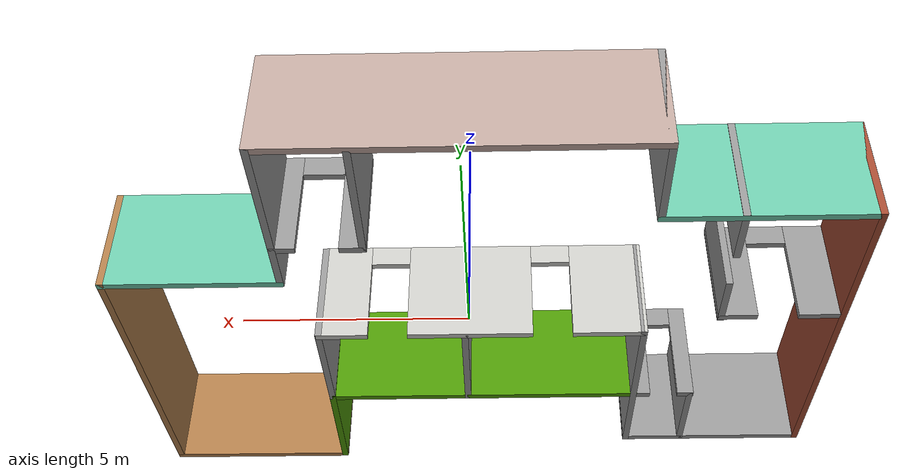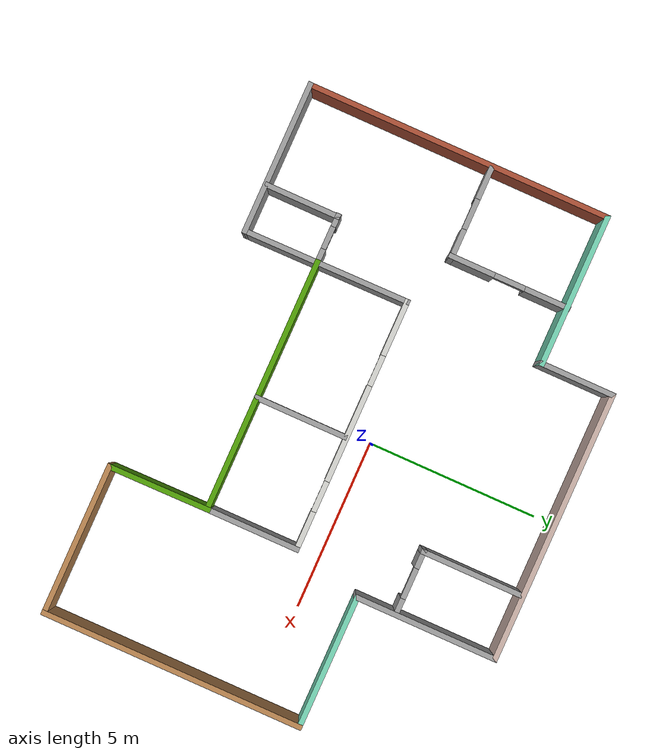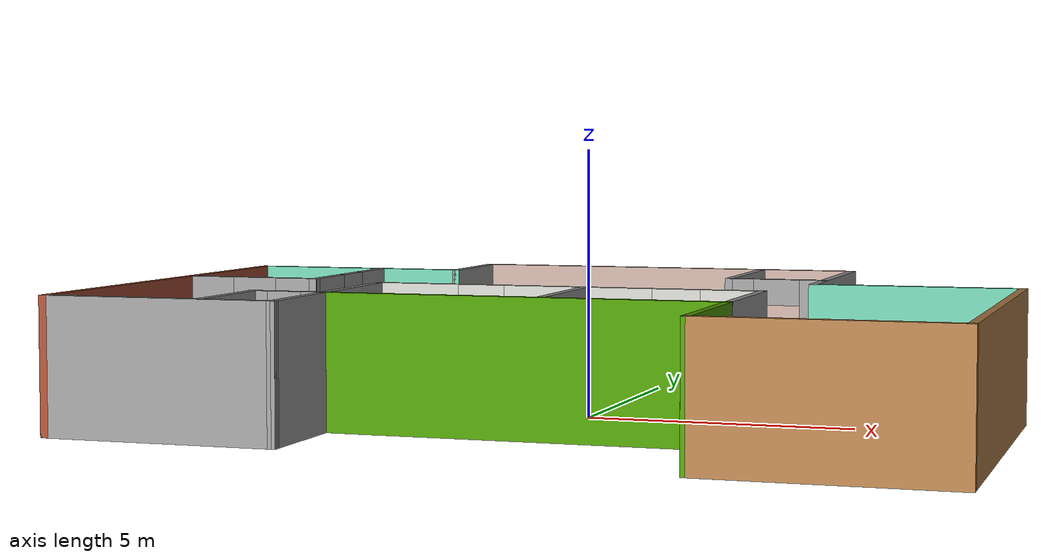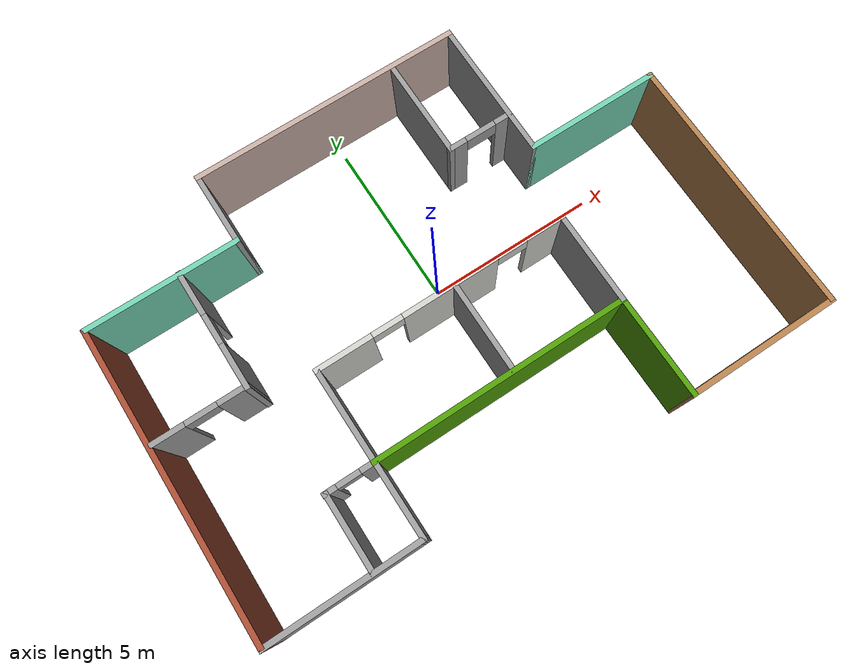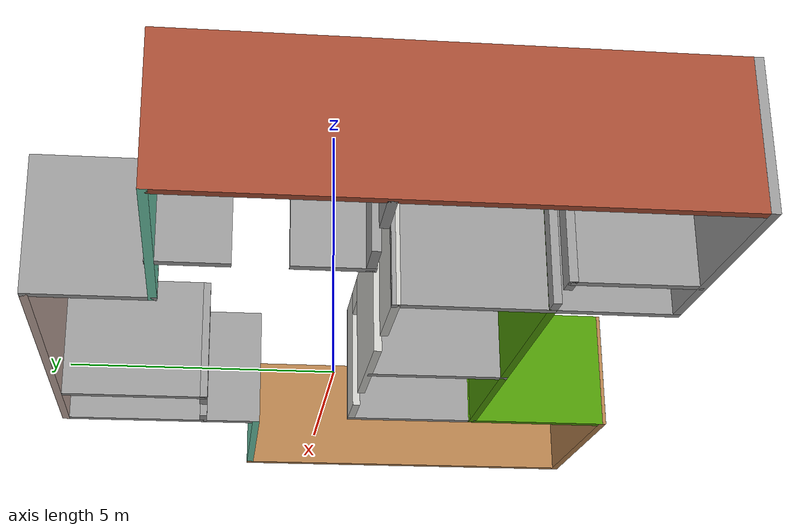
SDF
<?xml version='1.0'?>
<sdf version='1.6'>
  <model name='details-world'>
    <pose frame=''>-0.211429 -0.403532 0 0 -0 0</pose>
    <link name='Wall_10'>
      <collision name='Wall_10_Collision'>
        <geometry>
          <box>
            <size>4.5 0.15 2.5</size>
          </box>
        </geometry>
        <pose frame=''>0 0 1.25 0 -0 0</pose>
      </collision>
      <visual name='Wall_10_Visual'>
        <pose frame=''>0 0 1.25 0 -0 0</pose>
        <geometry>
          <box>
            <size>4.5 0.15 2.5</size>
          </box>
        </geometry>
        <material>
          <script>
            <uri>file://media/materials/scripts/gazebo.material</uri>
            <name>Gazebo/Grey</name>
          </script>
          <ambient>1 1 1 1</ambient>
        </material>
        <meta>
          <layer>0</layer>
        </meta>
      </visual>
      <pose frame=''>-5.85 -5.09966 0 0 -0 3.14159</pose>
    </link>
    <link name='Wall_11'>
      <collision name='Wall_11_Collision'>
        <geometry>
          <box>
            <size>9 0.15 2.5</size>
          </box>
        </geometry>
        <pose frame=''>0 0 1.25 0 -0 0</pose>
      </collision>
      <visual name='Wall_11_Visual'>
        <pose frame=''>0 0 1.25 0 -0 0</pose>
        <geometry>
          <box>
            <size>9 0.15 2.5</size>
          </box>
        </geometry>
        <material>
          <script>
            <uri>file://media/materials/scripts/gazebo.material</uri>
            <name>Gazebo/Bricks</name>
          </script>
          <ambient>1 1 1 1</ambient>
        </material>
        <meta>
          <layer>0</layer>
        </meta>
      </visual>
      <pose frame=''>-8.025 -0.674659 0 0 -0 1.5708</pose>
    </link>
    <link name='Wall_12'>
      <collision name='Wall_12_Collision'>
        <geometry>
          <box>
            <size>4.5 0.15 2.5</size>
          </box>
        </geometry>
        <pose frame=''>0 0 1.25 0 -0 0</pose>
      </collision>
      <visual name='Wall_12_Visual'>
        <pose frame=''>0 0 1.25 0 -0 0</pose>
        <geometry>
          <box>
            <size>4.5 0.15 2.5</size>
          </box>
        </geometry>
        <material>
          <script>
            <uri>file://media/materials/scripts/gazebo.material</uri>
            <name>Gazebo/Grey</name>
          </script>
          <ambient>0.435294 0.796078 0.67451 1</ambient>
        </material>
        <meta>
          <layer>0</layer>
        </meta>
      </visual>
      <pose frame=''>-5.85 3.75034 0 0 -0 0</pose>
    </link>
    <link name='Wall_13'>
      <collision name='Wall_13_Collision'>
        <geometry>
          <box>
            <size>2.25 0.15 2.5</size>
          </box>
        </geometry>
        <pose frame=''>0 0 1.25 0 -0 0</pose>
      </collision>
      <visual name='Wall_13_Visual'>
        <pose frame=''>0 0 1.25 0 -0 0</pose>
        <geometry>
          <box>
            <size>2.25 0.15 2.5</size>
          </box>
        </geometry>
        <material>
          <script>
            <uri>file://media/materials/scripts/gazebo.material</uri>
            <name>Gazebo/Grey</name>
          </script>
          <ambient>1 1 1 1</ambient>
        </material>
        <meta>
          <layer>0</layer>
        </meta>
      </visual>
      <pose frame=''>-3.675 4.80034 0 0 -0 1.5708</pose>
    </link>
    <link name='Wall_17'>
      <pose frame=''>3.23092 2.89683 0 0 -0 3.14159</pose>
      <visual name='Wall_17_Visual_0'>
        <pose frame=''>-0.732822 0 1.25 0 -0 0</pose>
        <geometry>
          <box>
            <size>0.534355 0.15 2.5</size>
          </box>
        </geometry>
        <material>
          <script>
            <uri>file://media/materials/scripts/gazebo.material</uri>
            <name>Gazebo/Grey</name>
          </script>
          <ambient>1 1 1 1</ambient>
        </material>
        <meta>
          <layer>0</layer>
        </meta>
      </visual>
      <collision name='Wall_17_Collision_0'>
        <geometry>
          <box>
            <size>0.534355 0.15 2.5</size>
          </box>
        </geometry>
        <pose frame=''>-0.732822 0 1.25 0 -0 0</pose>
      </collision>
      <visual name='Wall_17_Visual_1'>
        <pose frame=''>0.717178 0 1.25 0 -0 0</pose>
        <geometry>
          <box>
            <size>0.565645 0.15 2.5</size>
          </box>
        </geometry>
        <material>
          <script>
            <uri>file://media/materials/scripts/gazebo.material</uri>
            <name>Gazebo/Grey</name>
          </script>
          <ambient>1 1 1 1</ambient>
        </material>
        <meta>
          <layer>0</layer>
        </meta>
      </visual>
      <collision name='Wall_17_Collision_1'>
        <geometry>
          <box>
            <size>0.565645 0.15 2.5</size>
          </box>
        </geometry>
        <pose frame=''>0.717178 0 1.25 0 -0 0</pose>
      </collision>
      <visual name='Wall_17_Visual_2'>
        <pose frame=''>-0.015645 0 2.25 0 -0 0</pose>
        <geometry>
          <box>
            <size>0.9 0.15 0.5</size>
          </box>
        </geometry>
        <material>
          <script>
            <uri>file://media/materials/scripts/gazebo.material</uri>
            <name>Gazebo/Grey</name>
          </script>
          <ambient>1 1 1 1</ambient>
        </material>
        <meta>
          <layer>0</layer>
        </meta>
      </visual>
      <collision name='Wall_17_Collision_2'>
        <geometry>
          <box>
            <size>0.9 0.15 0.5</size>
          </box>
        </geometry>
        <pose frame=''>-0.015645 0 2.25 0 -0 0</pose>
      </collision>
    </link>
    <link name='Wall_18'>
      <collision name='Wall_18_Collision'>
        <geometry>
          <box>
            <size>3 0.15 2.5</size>
          </box>
        </geometry>
        <pose frame=''>0 0 1.25 0 -0 0</pose>
      </collision>
      <visual name='Wall_18_Visual'>
        <pose frame=''>0 0 1.25 0 -0 0</pose>
        <geometry>
          <box>
            <size>3 0.15 2.5</size>
          </box>
        </geometry>
        <material>
          <script>
            <uri>file://media/materials/scripts/gazebo.material</uri>
            <name>Gazebo/Grey</name>
          </script>
          <ambient>1 1 1 1</ambient>
        </material>
        <meta>
          <layer>0</layer>
        </meta>
      </visual>
      <pose frame=''>2.30592 4.32183 0 0 -0 1.5708</pose>
    </link>
    <link name='Wall_2'>
      <collision name='Wall_2_Collision'>
        <geometry>
          <box>
            <size>8 0.15 2.5</size>
          </box>
        </geometry>
        <pose frame=''>0 0 1.25 0 -0 0</pose>
      </collision>
      <visual name='Wall_2_Visual'>
        <pose frame=''>0 0 1.25 0 -0 0</pose>
        <geometry>
          <box>
            <size>8 0.15 2.5</size>
          </box>
        </geometry>
        <material>
          <script>
            <uri>file://media/materials/scripts/gazebo.material</uri>
            <name>Gazebo/Grey</name>
          </script>
          <ambient>0.760784 0.662745 0.627451 1</ambient>
        </material>
        <meta>
          <layer>0</layer>
        </meta>
      </visual>
      <pose frame=''>0.25 5.85034 0 0 -0 0</pose>
    </link>
    <link name='Wall_23'>
      <pose frame=''>-0.0399 -0.285362 0 0 -0 0</pose>
      <visual name='Wall_23_Visual_0'>
        <pose frame=''>-2.91108 0 1.25 0 -0 0</pose>
        <geometry>
          <box>
            <size>1.67783 0.15 2.5</size>
          </box>
        </geometry>
        <material>
          <script>
            <uri>file://media/materials/scripts/gazebo.material</uri>
            <name>Gazebo/CeilingTiled</name>
          </script>
          <ambient>1 1 1 1</ambient>
        </material>
        <meta>
          <layer>0</layer>
        </meta>
      </visual>
      <collision name='Wall_23_Collision_0'>
        <geometry>
          <box>
            <size>1.67783 0.15 2.5</size>
          </box>
        </geometry>
        <pose frame=''>-2.91108 0 1.25 0 -0 0</pose>
      </collision>
      <visual name='Wall_23_Visual_1'>
        <pose frame=''>0.250422 0 1.25 0 -0 0</pose>
        <geometry>
          <box>
            <size>2.84517 0.15 2.5</size>
          </box>
        </geometry>
        <material>
          <script>
            <uri>file://media/materials/scripts/gazebo.material</uri>
            <name>Gazebo/CeilingTiled</name>
          </script>
          <ambient>1 1 1 1</ambient>
        </material>
        <meta>
          <layer>0</layer>
        </meta>
      </visual>
      <collision name='Wall_23_Collision_1'>
        <geometry>
          <box>
            <size>2.84517 0.15 2.5</size>
          </box>
        </geometry>
        <pose frame=''>0.250422 0 1.25 0 -0 0</pose>
      </collision>
      <visual name='Wall_23_Visual_2'>
        <pose frame=''>3.16151 0 1.25 0 -0 0</pose>
        <geometry>
          <box>
            <size>1.17699 0.15 2.5</size>
          </box>
        </geometry>
        <material>
          <script>
            <uri>file://media/materials/scripts/gazebo.material</uri>
            <name>Gazebo/CeilingTiled</name>
          </script>
          <ambient>1 1 1 1</ambient>
        </material>
        <meta>
          <layer>0</layer>
        </meta>
      </visual>
      <collision name='Wall_23_Collision_2'>
        <geometry>
          <box>
            <size>1.17699 0.15 2.5</size>
          </box>
        </geometry>
        <pose frame=''>3.16151 0 1.25 0 -0 0</pose>
      </collision>
      <visual name='Wall_23_Visual_3'>
        <pose frame=''>-1.62217 0 2.25 0 -0 0</pose>
        <geometry>
          <box>
            <size>0.9 0.15 0.5</size>
          </box>
        </geometry>
        <material>
          <script>
            <uri>file://media/materials/scripts/gazebo.material</uri>
            <name>Gazebo/CeilingTiled</name>
          </script>
          <ambient>1 1 1 1</ambient>
        </material>
        <meta>
          <layer>0</layer>
        </meta>
      </visual>
      <collision name='Wall_23_Collision_3'>
        <geometry>
          <box>
            <size>0.9 0.15 0.5</size>
          </box>
        </geometry>
        <pose frame=''>-1.62217 0 2.25 0 -0 0</pose>
      </collision>
      <visual name='Wall_23_Visual_4'>
        <pose frame=''>2.12301 0 2.25 0 -0 0</pose>
        <geometry>
          <box>
            <size>0.9 0.15 0.5</size>
          </box>
        </geometry>
        <material>
          <script>
            <uri>file://media/materials/scripts/gazebo.material</uri>
            <name>Gazebo/CeilingTiled</name>
          </script>
          <ambient>1 1 1 1</ambient>
        </material>
        <meta>
          <layer>0</layer>
        </meta>
      </visual>
      <collision name='Wall_23_Collision_4'>
        <geometry>
          <box>
            <size>0.9 0.15 0.5</size>
          </box>
        </geometry>
        <pose frame=''>2.12301 0 2.25 0 -0 0</pose>
      </collision>
    </link>
    <link name='Wall_24'>
      <collision name='Wall_24_Collision'>
        <geometry>
          <box>
            <size>2.79139 0.15 2.5</size>
          </box>
        </geometry>
        <pose frame=''>0 0 1.25 0 -0 0</pose>
      </collision>
      <visual name='Wall_24_Visual'>
        <pose frame=''>0 0 1.25 0 -0 0</pose>
        <geometry>
          <box>
            <size>2.79139 0.15 2.5</size>
          </box>
        </geometry>
        <material>
          <script>
            <uri>file://media/materials/scripts/gazebo.material</uri>
            <name>Gazebo/Grey</name>
          </script>
          <ambient>1 1 1 1</ambient>
        </material>
        <meta>
          <layer>0</layer>
        </meta>
      </visual>
      <pose frame=''>3.64832 -1.60604 0 0 -0 -1.57085</pose>
    </link>
    <link name='Wall_26'>
      <collision name='Wall_26_Collision'>
        <geometry>
          <box>
            <size>2.75 0.15 2.5</size>
          </box>
        </geometry>
        <pose frame=''>0 0 1.25 0 -0 0</pose>
      </collision>
      <visual name='Wall_26_Visual'>
        <pose frame=''>0 0 1.25 0 -0 0</pose>
        <geometry>
          <box>
            <size>2.75 0.15 2.5</size>
          </box>
        </geometry>
        <material>
          <script>
            <uri>file://media/materials/scripts/gazebo.material</uri>
            <name>Gazebo/Grey</name>
          </script>
          <ambient>1 1 1 1</ambient>
        </material>
        <meta>
          <layer>0</layer>
        </meta>
      </visual>
      <pose frame=''>0.330676 -1.65012 0 0 -0 1.5708</pose>
    </link>
    <link name='Wall_28'>
      <pose frame=''>-5.34059 2.03423 0 0 -0 -1.5708</pose>
      <visual name='Wall_28_Visual_0'>
        <pose frame=''>-1.13129 0 1.25 0 -0 0</pose>
        <geometry>
          <box>
            <size>1.34784 0.15 2.5</size>
          </box>
        </geometry>
        <material>
          <script>
            <uri>file://media/materials/scripts/gazebo.material</uri>
            <name>Gazebo/Grey</name>
          </script>
          <ambient>1 1 1 1</ambient>
        </material>
        <meta>
          <layer>0</layer>
        </meta>
      </visual>
      <collision name='Wall_28_Collision_0'>
        <geometry>
          <box>
            <size>1.34784 0.15 2.5</size>
          </box>
        </geometry>
        <pose frame=''>-1.13129 0 1.25 0 -0 0</pose>
      </collision>
      <visual name='Wall_28_Visual_1'>
        <pose frame=''>1.12392 0 1.25 0 -0 0</pose>
        <geometry>
          <box>
            <size>1.36258 0.15 2.5</size>
          </box>
        </geometry>
        <material>
          <script>
            <uri>file://media/materials/scripts/gazebo.material</uri>
            <name>Gazebo/Grey</name>
          </script>
          <ambient>1 1 1 1</ambient>
        </material>
        <meta>
          <layer>0</layer>
        </meta>
      </visual>
      <collision name='Wall_28_Collision_1'>
        <geometry>
          <box>
            <size>1.36258 0.15 2.5</size>
          </box>
        </geometry>
        <pose frame=''>1.12392 0 1.25 0 -0 0</pose>
      </collision>
      <visual name='Wall_28_Visual_2'>
        <pose frame=''>-0.007369 0 2.25 0 -0 0</pose>
        <geometry>
          <box>
            <size>0.9 0.15 0.5</size>
          </box>
        </geometry>
        <material>
          <script>
            <uri>file://media/materials/scripts/gazebo.material</uri>
            <name>Gazebo/Grey</name>
          </script>
          <ambient>1 1 1 1</ambient>
        </material>
        <meta>
          <layer>0</layer>
        </meta>
      </visual>
      <collision name='Wall_28_Collision_2'>
        <geometry>
          <box>
            <size>0.9 0.15 0.5</size>
          </box>
        </geometry>
        <pose frame=''>-0.007369 0 2.25 0 -0 0</pose>
      </collision>
    </link>
    <link name='Wall_29'>
      <pose frame=''>-6.64059 0.327279 0 0 -0 3.14159</pose>
      <visual name='Wall_29_Visual_0'>
        <pose frame=''>-0.933846 0 1.25 0 -0 0</pose>
        <geometry>
          <box>
            <size>0.882309 0.15 2.5</size>
          </box>
        </geometry>
        <material>
          <script>
            <uri>file://media/materials/scripts/gazebo.material</uri>
            <name>Gazebo/Grey</name>
          </script>
          <ambient>1 1 1 1</ambient>
        </material>
        <meta>
          <layer>0</layer>
        </meta>
      </visual>
      <collision name='Wall_29_Collision_0'>
        <geometry>
          <box>
            <size>0.882309 0.15 2.5</size>
          </box>
        </geometry>
        <pose frame=''>-0.933846 0 1.25 0 -0 0</pose>
      </collision>
      <visual name='Wall_29_Visual_1'>
        <pose frame=''>0.891154 0 1.25 0 -0 0</pose>
        <geometry>
          <box>
            <size>0.967691 0.15 2.5</size>
          </box>
        </geometry>
        <material>
          <script>
            <uri>file://media/materials/scripts/gazebo.material</uri>
            <name>Gazebo/Grey</name>
          </script>
          <ambient>1 1 1 1</ambient>
        </material>
        <meta>
          <layer>0</layer>
        </meta>
      </visual>
      <collision name='Wall_29_Collision_1'>
        <geometry>
          <box>
            <size>0.967691 0.15 2.5</size>
          </box>
        </geometry>
        <pose frame=''>0.891154 0 1.25 0 -0 0</pose>
      </collision>
      <visual name='Wall_29_Visual_2'>
        <pose frame=''>-0.042691 0 2.25 0 -0 0</pose>
        <geometry>
          <box>
            <size>0.9 0.15 0.5</size>
          </box>
        </geometry>
        <material>
          <script>
            <uri>file://media/materials/scripts/gazebo.material</uri>
            <name>Gazebo/Grey</name>
          </script>
          <ambient>1 1 1 1</ambient>
        </material>
        <meta>
          <layer>0</layer>
        </meta>
      </visual>
      <collision name='Wall_29_Collision_2'>
        <geometry>
          <box>
            <size>0.9 0.15 0.5</size>
          </box>
        </geometry>
        <pose frame=''>-0.042691 0 2.25 0 -0 0</pose>
      </collision>
    </link>
    <link name='Wall_3'>
      <collision name='Wall_3_Collision'>
        <geometry>
          <box>
            <size>4.25 0.15 2.5</size>
          </box>
        </geometry>
        <pose frame=''>0 0 1.25 0 -0 0</pose>
      </collision>
      <visual name='Wall_3_Visual'>
        <pose frame=''>0 0 1.25 0 -0 0</pose>
        <geometry>
          <box>
            <size>4.25 0.15 2.5</size>
          </box>
        </geometry>
        <material>
          <script>
            <uri>file://media/materials/scripts/gazebo.material</uri>
            <name>Gazebo/Grey</name>
          </script>
          <ambient>1 1 1 1</ambient>
        </material>
        <meta>
          <layer>0</layer>
        </meta>
      </visual>
      <pose frame=''>4.175 3.80034 0 0 -0 -1.5708</pose>
    </link>
    <link name='Wall_31'>
      <pose frame=''>-4.39906 -2.95396 0 0 -0 3.14159</pose>
      <visual name='Wall_31_Visual_0'>
        <pose frame=''>-0.526854 0 1.25 0 -0 0</pose>
        <geometry>
          <box>
            <size>0.446292 0.15 2.5</size>
          </box>
        </geometry>
        <material>
          <script>
            <uri>file://media/materials/scripts/gazebo.material</uri>
            <name>Gazebo/Grey</name>
          </script>
          <ambient>1 1 1 1</ambient>
        </material>
        <meta>
          <layer>0</layer>
        </meta>
      </visual>
      <collision name='Wall_31_Collision_0'>
        <geometry>
          <box>
            <size>0.446292 0.15 2.5</size>
          </box>
        </geometry>
        <pose frame=''>-0.526854 0 1.25 0 -0 0</pose>
      </collision>
      <visual name='Wall_31_Visual_1'>
        <pose frame=''>0.553445 0 1.25 0 -0 0</pose>
        <geometry>
          <box>
            <size>0.39311 0.15 2.5</size>
          </box>
        </geometry>
        <material>
          <script>
            <uri>file://media/materials/scripts/gazebo.material</uri>
            <name>Gazebo/Grey</name>
          </script>
          <ambient>1 1 1 1</ambient>
        </material>
        <meta>
          <layer>0</layer>
        </meta>
      </visual>
      <collision name='Wall_31_Collision_1'>
        <geometry>
          <box>
            <size>0.39311 0.15 2.5</size>
          </box>
        </geometry>
        <pose frame=''>0.553445 0 1.25 0 -0 0</pose>
      </collision>
      <visual name='Wall_31_Visual_2'>
        <pose frame=''>0.026591 0 2.25 0 -0 0</pose>
        <geometry>
          <box>
            <size>0.660598 0.15 0.5</size>
          </box>
        </geometry>
        <material>
          <script>
            <uri>file://media/materials/scripts/gazebo.material</uri>
            <name>Gazebo/Grey</name>
          </script>
          <ambient>1 1 1 1</ambient>
        </material>
        <meta>
          <layer>0</layer>
        </meta>
      </visual>
      <collision name='Wall_31_Collision_2'>
        <geometry>
          <box>
            <size>0.660598 0.15 0.5</size>
          </box>
        </geometry>
        <pose frame=''>0.026591 0 2.25 0 -0 0</pose>
      </collision>
    </link>
    <link name='Wall_32'>
      <collision name='Wall_32_Collision'>
        <geometry>
          <box>
            <size>2.23087 0.15 2.5</size>
          </box>
        </geometry>
        <pose frame=''>0 0 1.25 0 -0 0</pose>
      </collision>
      <visual name='Wall_32_Visual'>
        <pose frame=''>0 0 1.25 0 -0 0</pose>
        <geometry>
          <box>
            <size>2.23087 0.15 2.5</size>
          </box>
        </geometry>
        <material>
          <script>
            <uri>file://media/materials/scripts/gazebo.material</uri>
            <name>Gazebo/Grey</name>
          </script>
          <ambient>1 1 1 1</ambient>
        </material>
        <meta>
          <layer>0</layer>
        </meta>
      </visual>
      <pose frame=''>-5.05876 -4.00969 0 0 -0 -1.5708</pose>
    </link>
    <link name='Wall_36'>
      <collision name='Wall_36_Collision'>
        <geometry>
          <box>
            <size>4.96446 0.15 2.5</size>
          </box>
        </geometry>
        <pose frame=''>0 0 1.25 0 -0 0</pose>
      </collision>
      <visual name='Wall_36_Visual'>
        <pose frame=''>0 0 1.25 0 -0 0</pose>
        <geometry>
          <box>
            <size>4.96446 0.15 2.5</size>
          </box>
        </geometry>
        <material>
          <script>
            <uri>file://media/materials/scripts/gazebo.material</uri>
            <name>Gazebo/Grey</name>
          </script>
          <ambient>1 1 1 1</ambient>
        </material>
        <meta>
          <layer>0</layer>
        </meta>
      </visual>
      <pose frame=''>-3.69495 -2.69251 0 0 -0 -1.56251</pose>
    </link>
    <link name='Wall_4'>
      <collision name='Wall_4_Collision'>
        <geometry>
          <box>
            <size>4 0.15 2.5</size>
          </box>
        </geometry>
        <pose frame=''>0 0 1.25 0 -0 0</pose>
      </collision>
      <visual name='Wall_4_Visual'>
        <pose frame=''>0 0 1.25 0 -0 0</pose>
        <geometry>
          <box>
            <size>4 0.15 2.5</size>
          </box>
        </geometry>
        <material>
          <script>
            <uri>file://media/materials/scripts/gazebo.material</uri>
            <name>Gazebo/Grey</name>
          </script>
          <ambient>0.435294 0.796078 0.67451 1</ambient>
        </material>
        <meta>
          <layer>0</layer>
        </meta>
      </visual>
      <pose frame=''>6.1 1.75034 0 0 -0 0</pose>
    </link>
    <link name='Wall_5'>
      <collision name='Wall_5_Collision'>
        <geometry>
          <box>
            <size>7.75 0.15 2.5</size>
          </box>
        </geometry>
        <pose frame=''>0 0 1.25 0 -0 0</pose>
      </collision>
      <visual name='Wall_5_Visual'>
        <pose frame=''>0 0 1.25 0 -0 0</pose>
        <geometry>
          <box>
            <size>7.75 0.15 2.5</size>
          </box>
        </geometry>
        <material>
          <script>
            <uri>file://media/materials/scripts/gazebo.material</uri>
            <name>Gazebo/Wood</name>
          </script>
          <ambient>1 1 1 1</ambient>
        </material>
        <meta>
          <layer>0</layer>
        </meta>
      </visual>
      <pose frame=''>8.025 -2.04966 0 0 -0 -1.5708</pose>
    </link>
    <link name='Wall_6'>
      <collision name='Wall_6_Collision'>
        <geometry>
          <box>
            <size>4.5 0.15 2.5</size>
          </box>
        </geometry>
        <pose frame=''>0 0 1.25 0 -0 0</pose>
      </collision>
      <visual name='Wall_6_Visual'>
        <pose frame=''>0 0 1.25 0 -0 0</pose>
        <geometry>
          <box>
            <size>4.5 0.15 2.5</size>
          </box>
        </geometry>
        <material>
          <script>
            <uri>file://media/materials/scripts/gazebo.material</uri>
            <name>Gazebo/Wood</name>
          </script>
          <ambient>1 1 1 1</ambient>
        </material>
        <meta>
          <layer>0</layer>
        </meta>
      </visual>
      <pose frame=''>5.85 -5.84966 0 0 -0 3.14159</pose>
    </link>
    <link name='Wall_7'>
      <collision name='Wall_7_Collision'>
        <geometry>
          <box>
            <size>3.07307 0.15 2.5</size>
          </box>
        </geometry>
        <pose frame=''>0 0 1.25 0 -0 0</pose>
      </collision>
      <visual name='Wall_7_Visual'>
        <pose frame=''>0 0 1.25 0 -0 0</pose>
        <geometry>
          <box>
            <size>3.07307 0.15 2.5</size>
          </box>
        </geometry>
        <material>
          <script>
            <uri>file://media/materials/scripts/gazebo.material</uri>
            <name>Gazebo/Grey</name>
          </script>
          <ambient>0.305882 0.603922 0.0235294 1</ambient>
        </material>
        <meta>
          <layer>0</layer>
        </meta>
      </visual>
      <pose frame=''>3.66162 -4.38819 0 0 -0 1.57995</pose>
    </link>
    <link name='Wall_8'>
      <collision name='Wall_8_Collision'>
        <geometry>
          <box>
            <size>7.5 0.15 2.5</size>
          </box>
        </geometry>
        <pose frame=''>0 0 1.25 0 -0 0</pose>
      </collision>
      <visual name='Wall_8_Visual'>
        <pose frame=''>0 0 1.25 0 -0 0</pose>
        <geometry>
          <box>
            <size>7.5 0.15 2.5</size>
          </box>
        </geometry>
        <material>
          <script>
            <uri>file://media/materials/scripts/gazebo.material</uri>
            <name>Gazebo/Grey</name>
          </script>
          <ambient>0.305882 0.603922 0.0235294 1</ambient>
        </material>
        <meta>
          <layer>0</layer>
        </meta>
      </visual>
      <pose frame=''>-0.026751 -2.95347 0 0 -0 3.14159</pose>
    </link>
    <static>1</static>
  </model>
</sdf>
